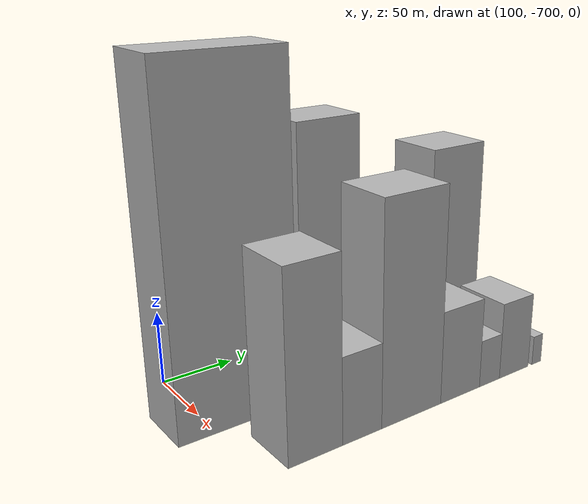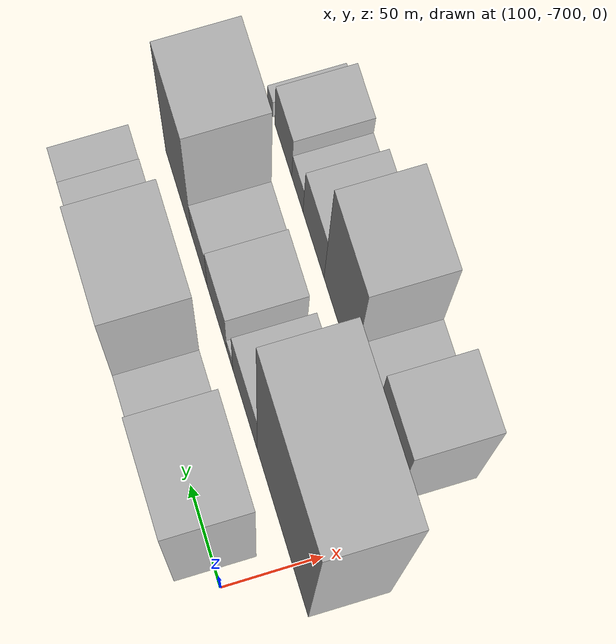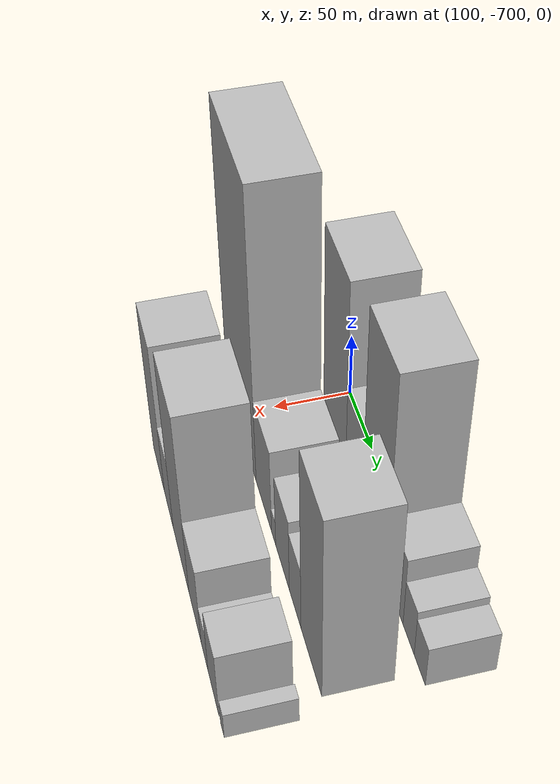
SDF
<sdf version="1.6">
 <world name="default">
  <model name="building_7">
   <static>1</static>
   <pose>100.0000 -665.0568 0 0.000000 0.000000 0.000000</pose>
   <link name="link">
    <pose>0 0 75.00 0 0 0</pose>
    <collision name="collision"><geometry><box><size>40.0000 51.7253 150.0000</size></box></geometry></collision>
    <visual name="visual">
     <cast_shadows>0</cast_shadows>
     <geometry><box><size>40.0000 51.7253 150.0000</size></box></geometry>
     <material>
      <script>
       <uri>model://HANNAS_wall/materials/scripts</uri>
       <uri>model://HANNAS_wall/materials/textures</uri>
       <name>vrc/HANNAS_wall</name>
      </script>
     </material>
    </visual>
   </link>
  </model>
  <model name="building_8">
   <static>1</static>
   <pose>100.0000 -621.4893 0 0.000000 0.000000 0.000000</pose>
   <link name="link">
    <pose>0 0 34.50 0 0 0</pose>
    <collision name="collision"><geometry><box><size>40.0000 35.4097 69.0000</size></box></geometry></collision>
    <visual name="visual">
     <cast_shadows>0</cast_shadows>
     <geometry><box><size>40.0000 35.4097 69.0000</size></box></geometry>
     <material>
      <script>
       <uri>model://HANNAS_wall/materials/scripts</uri>
       <uri>model://HANNAS_wall/materials/textures</uri>
       <name>vrc/HANNAS_wall</name>
      </script>
     </material>
    </visual>
   </link>
  </model>
  <model name="building_9">
   <static>1</static>
   <pose>100.0000 -578.0950 0 0.000000 0.000000 0.000000</pose>
   <link name="link">
    <pose>0 0 82.50 0 0 0</pose>
    <collision name="collision"><geometry><box><size>40.0000 51.3789 165.0000</size></box></geometry></collision>
    <visual name="visual">
     <cast_shadows>0</cast_shadows>
     <geometry><box><size>40.0000 51.3789 165.0000</size></box></geometry>
     <material>
      <script>
       <uri>model://HANNAS_wall/materials/scripts</uri>
       <uri>model://HANNAS_wall/materials/textures</uri>
       <name>vrc/HANNAS_wall</name>
      </script>
     </material>
    </visual>
   </link>
  </model>
  <model name="building_10">
   <static>1</static>
   <pose>100.0000 -536.9174 0 0.000000 0.000000 0.000000</pose>
   <link name="link">
    <pose>0 0 28.50 0 0 0</pose>
    <collision name="collision"><geometry><box><size>40.0000 30.9762 57.0000</size></box></geometry></collision>
    <visual name="visual">
     <cast_shadows>0</cast_shadows>
     <geometry><box><size>40.0000 30.9762 57.0000</size></box></geometry>
     <material>
      <script>
       <uri>model://HANNAS_wall/materials/scripts</uri>
       <uri>model://HANNAS_wall/materials/textures</uri>
       <name>vrc/HANNAS_wall</name>
      </script>
     </material>
    </visual>
   </link>
  </model>
  <model name="building_11">
   <static>1</static>
   <pose>100.0000 -511.2003 0 0.000000 0.000000 0.000000</pose>
   <link name="link">
    <pose>0 0 19.50 0 0 0</pose>
    <collision name="collision"><geometry><box><size>40.0000 20.4582 39.0000</size></box></geometry></collision>
    <visual name="visual">
     <cast_shadows>0</cast_shadows>
     <geometry><box><size>40.0000 20.4582 39.0000</size></box></geometry>
     <material>
      <script>
       <uri>model://HANNAS_wall/materials/scripts</uri>
       <uri>model://HANNAS_wall/materials/textures</uri>
       <name>vrc/HANNAS_wall</name>
      </script>
     </material>
    </visual>
   </link>
  </model>
  <model name="building_12">
   <static>1</static>
   <pose>100.0000 -491.1092 0 0.000000 0.000000 0.000000</pose>
   <link name="link">
    <pose>0 0 16.50 0 0 0</pose>
    <collision name="collision"><geometry><box><size>40.0000 19.7239 33.0000</size></box></geometry></collision>
    <visual name="visual">
     <cast_shadows>0</cast_shadows>
     <geometry><box><size>40.0000 19.7239 33.0000</size></box></geometry>
     <material>
      <script>
       <uri>model://HANNAS_wall/materials/scripts</uri>
       <uri>model://HANNAS_wall/materials/textures</uri>
       <name>vrc/HANNAS_wall</name>
      </script>
     </material>
    </visual>
   </link>
  </model>
  <model name="building_56">
   <static>1</static>
   <pose>155.0000 -683.8032 0 0.000000 0.000000 0.000000</pose>
   <link name="link">
    <pose>0 0 111.00 0 0 0</pose>
    <collision name="collision"><geometry><box><size>40.0000 82.0228 222.0000</size></box></geometry></collision>
    <visual name="visual">
     <cast_shadows>0</cast_shadows>
     <geometry><box><size>40.0000 82.0228 222.0000</size></box></geometry>
     <material>
      <script>
       <uri>model://HANNAS_wall/materials/scripts</uri>
       <uri>model://HANNAS_wall/materials/textures</uri>
       <name>vrc/HANNAS_wall</name>
      </script>
     </material>
    </visual>
   </link>
  </model>
  <model name="building_57">
   <static>1</static>
   <pose>155.0000 -622.7262 0 0.000000 0.000000 0.000000</pose>
   <link name="link">
    <pose>0 0 34.50 0 0 0</pose>
    <collision name="collision"><geometry><box><size>40.0000 40.1311 69.0000</size></box></geometry></collision>
    <visual name="visual">
     <cast_shadows>0</cast_shadows>
     <geometry><box><size>40.0000 40.1311 69.0000</size></box></geometry>
     <material>
      <script>
       <uri>model://HANNAS_wall/materials/scripts</uri>
       <uri>model://HANNAS_wall/materials/textures</uri>
       <name>vrc/HANNAS_wall</name>
      </script>
     </material>
    </visual>
   </link>
  </model>
  <model name="building_58">
   <static>1</static>
   <pose>155.0000 -597.5790 0 0.000000 0.000000 0.000000</pose>
   <link name="link">
    <pose>0 0 10.50 0 0 0</pose>
    <collision name="collision"><geometry><box><size>40.0000 10.1633 21.0000</size></box></geometry></collision>
    <visual name="visual">
     <cast_shadows>0</cast_shadows>
     <geometry><box><size>40.0000 10.1633 21.0000</size></box></geometry>
     <material>
      <script>
       <uri>model://HANNAS_wall/materials/scripts</uri>
       <uri>model://HANNAS_wall/materials/textures</uri>
       <name>vrc/HANNAS_wall</name>
      </script>
     </material>
    </visual>
   </link>
  </model>
  <model name="building_59">
   <static>1</static>
   <pose>155.0000 -576.0918 0 0.000000 0.000000 0.000000</pose>
   <link name="link">
    <pose>0 0 30.00 0 0 0</pose>
    <collision name="collision"><geometry><box><size>40.0000 32.8111 60.0000</size></box></geometry></collision>
    <visual name="visual">
     <cast_shadows>0</cast_shadows>
     <geometry><box><size>40.0000 32.8111 60.0000</size></box></geometry>
     <material>
      <script>
       <uri>model://HANNAS_wall/materials/scripts</uri>
       <uri>model://HANNAS_wall/materials/textures</uri>
       <name>vrc/HANNAS_wall</name>
      </script>
     </material>
    </visual>
   </link>
  </model>
  <model name="building_60">
   <static>1</static>
   <pose>155.0000 -546.4529 0 0.000000 0.000000 0.000000</pose>
   <link name="link">
    <pose>0 0 25.50 0 0 0</pose>
    <collision name="collision"><geometry><box><size>40.0000 26.4667 51.0000</size></box></geometry></collision>
    <visual name="visual">
     <cast_shadows>0</cast_shadows>
     <geometry><box><size>40.0000 26.4667 51.0000</size></box></geometry>
     <material>
      <script>
       <uri>model://HANNAS_wall/materials/scripts</uri>
       <uri>model://HANNAS_wall/materials/textures</uri>
       <name>vrc/HANNAS_wall</name>
      </script>
     </material>
    </visual>
   </link>
  </model>
  <model name="building_61">
   <static>1</static>
   <pose>155.0000 -510.8375 0 0.000000 0.000000 0.000000</pose>
   <link name="link">
    <pose>0 0 73.50 0 0 0</pose>
    <collision name="collision"><geometry><box><size>40.0000 44.7640 147.0000</size></box></geometry></collision>
    <visual name="visual">
     <cast_shadows>0</cast_shadows>
     <geometry><box><size>40.0000 44.7640 147.0000</size></box></geometry>
     <material>
      <script>
       <uri>model://HANNAS_wall/materials/scripts</uri>
       <uri>model://HANNAS_wall/materials/textures</uri>
       <name>vrc/HANNAS_wall</name>
      </script>
     </material>
    </visual>
   </link>
  </model>
  <model name="building_107">
   <static>1</static>
   <pose>210.0000 -666.8787 0 0.000000 0.000000 0.000000</pose>
   <link name="link">
    <pose>0 0 60.00 0 0 0</pose>
    <collision name="collision"><geometry><box><size>40.0000 37.1859 120.0000</size></box></geometry></collision>
    <visual name="visual">
     <cast_shadows>0</cast_shadows>
     <geometry><box><size>40.0000 37.1859 120.0000</size></box></geometry>
     <material>
      <script>
       <uri>model://HANNAS_wall/materials/scripts</uri>
       <uri>model://HANNAS_wall/materials/textures</uri>
       <name>vrc/HANNAS_wall</name>
      </script>
     </material>
    </visual>
   </link>
  </model>
  <model name="building_108">
   <static>1</static>
   <pose>210.0000 -633.8400 0 0.000000 0.000000 0.000000</pose>
   <link name="link">
    <pose>0 0 28.50 0 0 0</pose>
    <collision name="collision"><geometry><box><size>40.0000 28.8915 57.0000</size></box></geometry></collision>
    <visual name="visual">
     <cast_shadows>0</cast_shadows>
     <geometry><box><size>40.0000 28.8915 57.0000</size></box></geometry>
     <material>
      <script>
       <uri>model://HANNAS_wall/materials/scripts</uri>
       <uri>model://HANNAS_wall/materials/textures</uri>
       <name>vrc/HANNAS_wall</name>
      </script>
     </material>
    </visual>
   </link>
  </model>
  <model name="building_109">
   <static>1</static>
   <pose>210.0000 -595.5925 0 0.000000 0.000000 0.000000</pose>
   <link name="link">
    <pose>0 0 72.00 0 0 0</pose>
    <collision name="collision"><geometry><box><size>40.0000 47.6035 144.0000</size></box></geometry></collision>
    <visual name="visual">
     <cast_shadows>0</cast_shadows>
     <geometry><box><size>40.0000 47.6035 144.0000</size></box></geometry>
     <material>
      <script>
       <uri>model://HANNAS_wall/materials/scripts</uri>
       <uri>model://HANNAS_wall/materials/textures</uri>
       <name>vrc/HANNAS_wall</name>
      </script>
     </material>
    </visual>
   </link>
  </model>
  <model name="building_110">
   <static>1</static>
   <pose>210.0000 -554.6312 0 0.000000 0.000000 0.000000</pose>
   <link name="link">
    <pose>0 0 31.50 0 0 0</pose>
    <collision name="collision"><geometry><box><size>40.0000 34.3191 63.0000</size></box></geometry></collision>
    <visual name="visual">
     <cast_shadows>0</cast_shadows>
     <geometry><box><size>40.0000 34.3191 63.0000</size></box></geometry>
     <material>
      <script>
       <uri>model://HANNAS_wall/materials/scripts</uri>
       <uri>model://HANNAS_wall/materials/textures</uri>
       <name>vrc/HANNAS_wall</name>
      </script>
     </material>
    </visual>
   </link>
  </model>
  <model name="building_111">
   <static>1</static>
   <pose>210.0000 -528.1250 0 0.000000 0.000000 0.000000</pose>
   <link name="link">
    <pose>0 0 16.50 0 0 0</pose>
    <collision name="collision"><geometry><box><size>40.0000 18.6933 33.0000</size></box></geometry></collision>
    <visual name="visual">
     <cast_shadows>0</cast_shadows>
     <geometry><box><size>40.0000 18.6933 33.0000</size></box></geometry>
     <material>
      <script>
       <uri>model://HANNAS_wall/materials/scripts</uri>
       <uri>model://HANNAS_wall/materials/textures</uri>
       <name>vrc/HANNAS_wall</name>
      </script>
     </material>
    </visual>
   </link>
  </model>
  <model name="building_112">
   <static>1</static>
   <pose>210.0000 -504.7287 0 0.000000 0.000000 0.000000</pose>
   <link name="link">
    <pose>0 0 27.00 0 0 0</pose>
    <collision name="collision"><geometry><box><size>40.0000 28.0993 54.0000</size></box></geometry></collision>
    <visual name="visual">
     <cast_shadows>0</cast_shadows>
     <geometry><box><size>40.0000 28.0993 54.0000</size></box></geometry>
     <material>
      <script>
       <uri>model://HANNAS_wall/materials/scripts</uri>
       <uri>model://HANNAS_wall/materials/textures</uri>
       <name>vrc/HANNAS_wall</name>
      </script>
     </material>
    </visual>
   </link>
  </model>
  <model name="building_113">
   <static>1</static>
   <pose>210.0000 -482.1570 0 0.000000 0.000000 0.000000</pose>
   <link name="link">
    <pose>0 0 10.50 0 0 0</pose>
    <collision name="collision"><geometry><box><size>40.0000 9.0439 21.0000</size></box></geometry></collision>
    <visual name="visual">
     <cast_shadows>0</cast_shadows>
     <geometry><box><size>40.0000 9.0439 21.0000</size></box></geometry>
     <material>
      <script>
       <uri>model://HANNAS_wall/materials/scripts</uri>
       <uri>model://HANNAS_wall/materials/textures</uri>
       <name>vrc/HANNAS_wall</name>
      </script>
     </material>
    </visual>
   </link>
  </model>
 </world>
</sdf>
